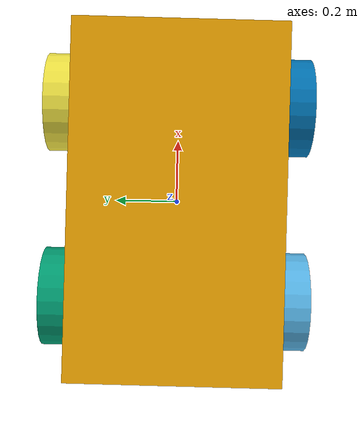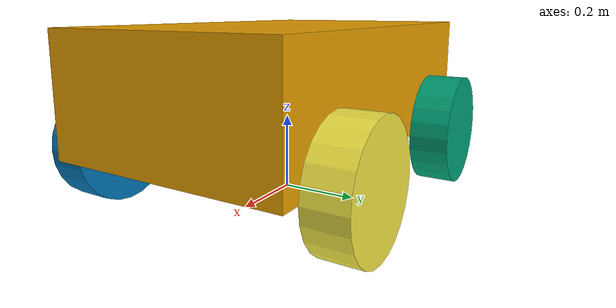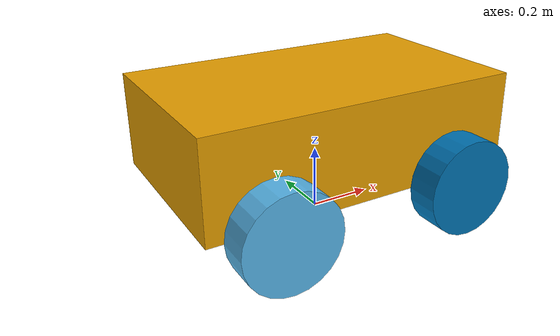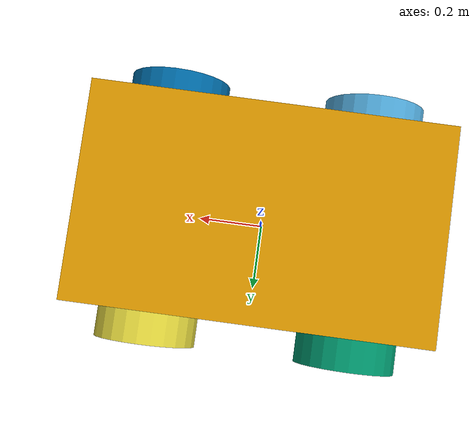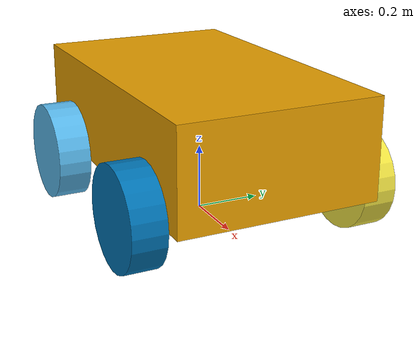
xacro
<?xml version="1.0"?>
<!-- Author: Andrea Gonzalez-->

<robot name="rdt26_robot" xmlns:xacro="http://www.ros.org/wiki/xacro">

<!-- Pi constant -->
<xacro:property name="pi_const" value="3.14159265"/>

<!-- Body dimensions-->
<xacro:property name="a" value="1" />
<xacro:property name="b" value="0.3" />
<xacro:property name="c" value="0.6" />

<!-- Wheel and caster dimensions -->
<!-- Wheel and caster radius -->
<xacro:property name="r" value="0.15" />
<!-- Wheel width-->
<xacro:property name="d" value="0.1" />

<xacro:property name="s1" value="${b/2+r}" />
<xacro:property name="s2" value="${2*r}" />
<xacro:property name="s3" value="${2*r}" />
<xacro:property name="s4" value="${c/2+d/2}" />

<!-- Mass and Inertia-->

<!-- Material density -->
<!-- Body material density -->
<xacro:property name="d1" value="2710.0" />
<!-- Wheel material density -->
<xacro:property name="d2" value="2710.0" />

<!-- Robot body mass, wheel mass -->
<!-- body -->
<xacro:property name="m1" value="${d1*a*b*c}" />
<!-- wheel -->
<xacro:property name="m2" value="${d2*pi_const*r*r*d}" />

<!-- Moments of interia of the robot body -->
<xacro:property name="Ix_body" value="${(1/12)*m1*(b*b+c*c)}" />
<xacro:property name="Iy_body" value="${(1/12)*m1*(a*a+b*b)}" />
<xacro:property name="Iz_body" value="${(1/12)*m1*(a*a+c*c)}" />

<!-- Moments of inertia of the wheel -->
<xacro:property name="Iz_wheel" value="${0.5*m2*r*r}" />
<xacro:property name="I_wheel" value="${(1.0/12.0)*m2*(3.0*r*r+d*d)}" />

<!-- This macro defines the complete inertial section of the robot body -->
<xacro:macro name="inertia_body">
    <inertial>
    <!-- Displacement and orientation of the center of the mass-->
    <origin rpy="0 0 0" xyz="0 0 ${s1}" />
    <mass value="${m1}" />
    <inertia ixx="${Ix_body}" ixy="0.0" ixz="0.0" iyy="${Iy_body}" iyz="0" izz="${Iz_body}" />
    </inertial>
</xacro:macro>

<!-- This macro defines the complete inertial section of the wheel -->
<xacro:macro name="inertia_wheel">
    <inertial>
    <origin rpy="1.570795 0 0" xyz="0 0 0" />
    <mass value="${m2}" />
    <inertia ixx="${I_wheel}" ixy="0.0" ixz="0.0" iyy="${I_wheel}" iyz="0" izz="${Iz_wheel}" />
    </inertial>
</xacro:macro>

<!-- DEFINE LINKS, JOINTS -->

<!-- Body link of the robot-->
<!-- allows us to render the box in gazebo -->
<link name="base_link">
    <visual>
        <geometry>
            <box size="${a} ${c} ${b}"/>
        </geometry>
    <!-- Displacement and orientation of the geometric center of the link with respect to the link frame body_link_joint -->
    <origin rpy="0.0 0.0 0.0" xyz="0 0 ${s1}" />
    </visual>

    <!-- how much collision space object/robot consumes -->
    <collision>
        <geometry>
            <box size="${a} ${b} ${c}"/>
        </geometry>
        <origin rpy="0.0 0.0 0.0" xyz="0 0 ${s1}" />
    </collision>

    <xacro:inertia_body />
</link>

<!-- Back right wheel of the robot and the joint-->
 <joint name="wheel1_joint" type="continuous">
    <parent link="base_link"/>
    <child link="wheel1_link"/>
    <!-- defined with respect to the coordinate frame of the parent link -->
    <origin xyz="${-s2} ${-s4} ${r}" rpy="0.0 0.0 0.0" />
    <!-- axis of rotation of the wheel -->
    <axis xyz="0.0 1.0 0.0"/>
    <!-- maximum torque -->
    <limit effort="50000" velocity="10"/>
    <dynamics damping="1.0" friction="1.0"/>
 </joint>

 <link name="wheel1_link">
    <visual>
        <origin xyz="0.0 0.0 0.0" rpy="1.570795 0.0 0.0"/>
        <geometry>
            <cylinder radius="${r}" length="${d}"/>
        </geometry>
    </visual>

    <collision>
        <origin xyz="0.0 0.0 0.0" rpy="1.570795 0.0 0.0"/>
        <geometry>
            <cylinder radius="${r}" length="${d}"/>
        </geometry>
    </collision>
    <xacro:inertia_wheel />
</link>

<!-- Back left wheel of the robot and the joint-->
 <joint name="wheel2_joint" type="continuous">
    <parent link="base_link"/>
    <child link="wheel2_link"/>
    <!-- defined with respect to the coordinate frame of the parent link -->
    <origin xyz="${-s2} ${s4} ${r}" rpy="0.0 0.0 0.0" />
    <!-- axis of rotation of the wheel -->
    <axis xyz="0.0 1.0 0.0"/>
    <!-- maximum torque -->
    <limit effort="50000" velocity="10"/>
    <dynamics damping="1.0" friction="1.0"/>
 </joint>

 <link name="wheel2_link">
    <visual>
        <origin xyz="0.0 0.0 0.0" rpy="1.570795 0.0 0.0"/>
        <geometry>
            <cylinder radius="${r}" length="${d}"/>
        </geometry>
    </visual>

    <collision>
        <origin xyz="0.0 0.0 0.0" rpy="1.570795 0.0 0.0"/>
        <geometry>
            <cylinder radius="${r}" length="${d}"/>
        </geometry>
    </collision>
    <xacro:inertia_wheel />
</link>

<!-- Front left wheel of the robot and the joint-->
 <joint name="wheel3_joint" type="continuous">
    <parent link="base_link"/>
    <child link="wheel3_link"/>
    <!-- defined with respect to the coordinate frame of the parent link -->
    <origin xyz="${s3} ${s4} ${r}" rpy="0.0 0.0 0.0" />
    <!-- axis of rotation of the wheel -->
    <axis xyz="0.0 1.0 0.0"/>
    <!-- maximum torque -->
    <limit effort="50000" velocity="10"/>
    <dynamics damping="1.0" friction="1.0"/>
 </joint>

 <link name="wheel3_link">
    <visual>
        <origin xyz="0.0 0.0 0.0" rpy="1.570795 0.0 0.0"/>
        <geometry>
            <cylinder radius="${r}" length="${d}"/>
        </geometry>
    </visual>

    <collision>
        <origin xyz="0.0 0.0 0.0" rpy="1.570795 0.0 0.0"/>
        <geometry>
            <cylinder radius="${r}" length="${d}"/>
        </geometry>
    </collision>
    <xacro:inertia_wheel />
</link>

<!-- Front right wheel of the robot and the joint-->
 <joint name="wheel4_joint" type="continuous">
    <parent link="base_link"/>
    <child link="wheel4_link"/>
    <!-- defined with respect to the coordinate frame of the parent link -->
    <origin xyz="${s3} ${-s4} ${r}" rpy="0.0 0.0 0.0" />
    <!-- axis of rotation of the wheel -->
    <axis xyz="0.0 1.0 0.0"/>
    <!-- maximum torque -->
    <limit effort="50000" velocity="10"/>
    <dynamics damping="1.0" friction="1.0"/>
 </joint>

 <link name="wheel4_link">
    <visual>
        <origin xyz="0.0 0.0 0.0" rpy="1.570795 0.0 0.0"/>
        <geometry>
            <cylinder radius="${r}" length="${d}"/>
        </geometry>
    </visual>

    <collision>
        <origin xyz="0.0 0.0 0.0" rpy="1.570795 0.0 0.0"/>
        <geometry>
            <cylinder radius="${r}" length="${d}"/>
        </geometry>
    </collision>
    <xacro:inertia_wheel />
</link>

<!-- camera file -->
<xacro:include filename="camera.xacro" />
<xacro:property name="x" value=".017"/>
<xacro:property name="y" value=".07"/>
<xacro:property name="z" value=".04"/>

<xacro:camera parent="base_link" pos="front" size_x="${x}" size_y="${y}" size_z="${z}">
    <origin xyz="0 0 0" rpy="0 0 0"/>
</xacro:camera>

<xacro:camera parent="base_link" pos="right" size_x="${x}" size_y="${y}" size_z="${z}">
    <origin xyz="0 0 0" rpy="0 0 0"/>
</xacro:camera>

</robot>

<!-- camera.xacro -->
<!-- Author: Mandy Wang-->

<robot xmlns:xacro="http://www.ros.org/wiki/xacro">

    <xacro:macro name="camera" params="parent pos size_x size_y size_z *origin">
    <!-- Pi constant -->
    <xacro:property name="pi_cam" value="3.14159265"/>

        <link name="${pos}_camera">
            <visual>
                <geometry>
                    <box size="${size_x} ${size_y} ${size_z}"/>
                </geometry>
                <material name="black">
                    <color rgba="0 0 0 1"/>
                </material>
            </visual>
        </link>

        <joint name="${pos}_camera_joint" type="fixed">
            <parent link="${parent}"/>
            <child link="${pos}_camera"/>
            <xacro:insert_block name="origin"/>
        </joint>
        <!--vision frame used by image and tf topics-->
        <link name="${pos}_camera_optical_frame_link"></link>

        <joint name="${pos}_camera_optical_frame_joint" type="fixed">
            <parent link="${pos}_camera"/>
            <child link="${pos}_camera_optical_frame_link"/>
            <origin xyz="0 0 0" rpy="${-pi_cam/2} 0 ${-pi_cam/2}"/>
        </joint>
    </xacro:macro>

</robot>
